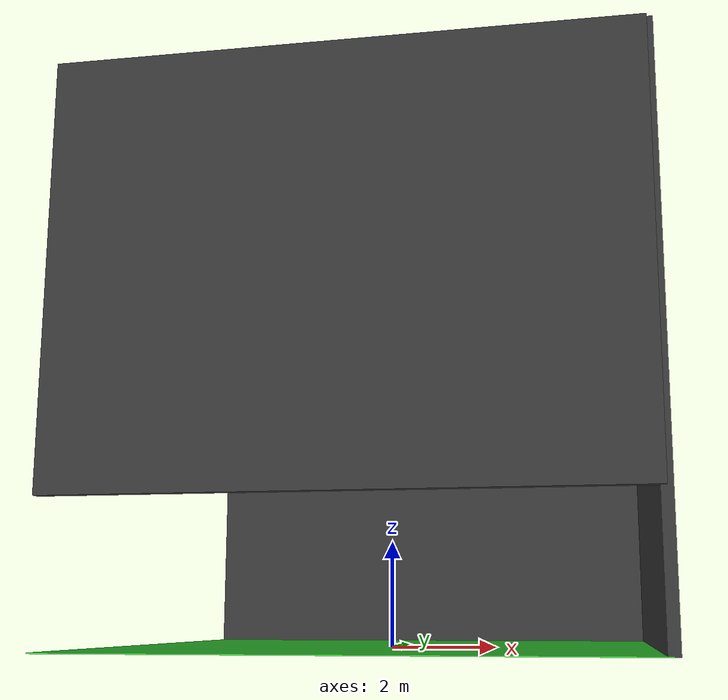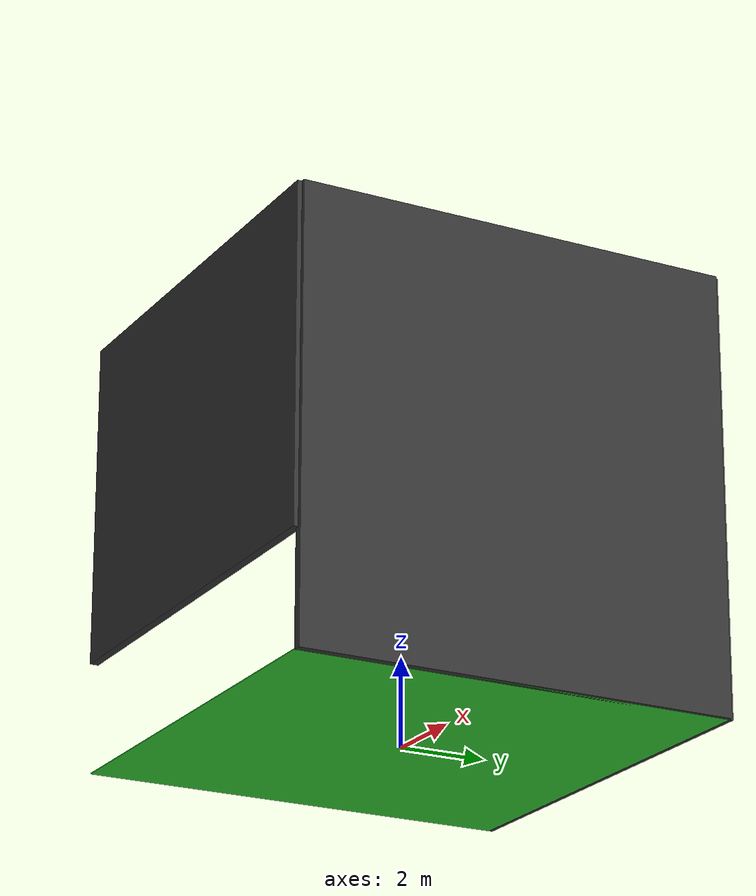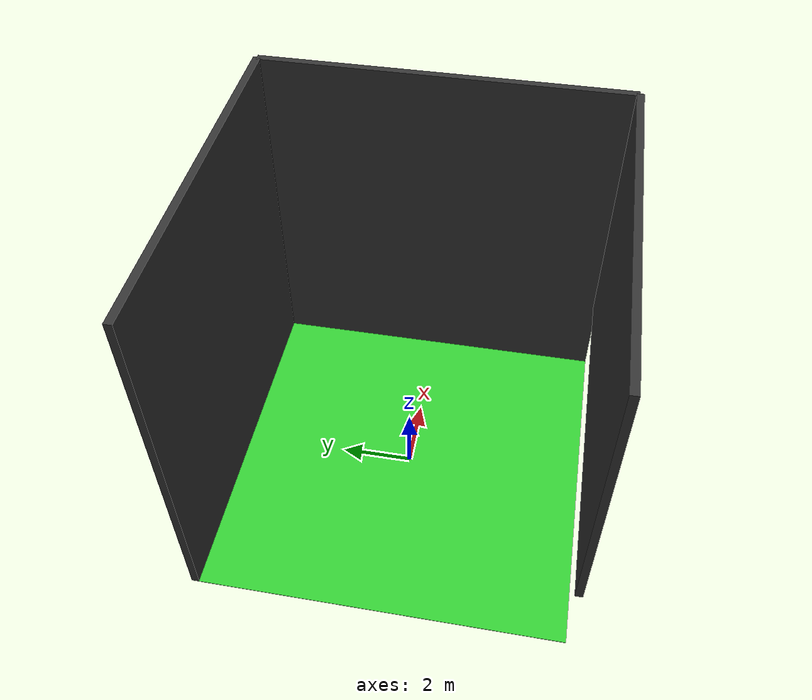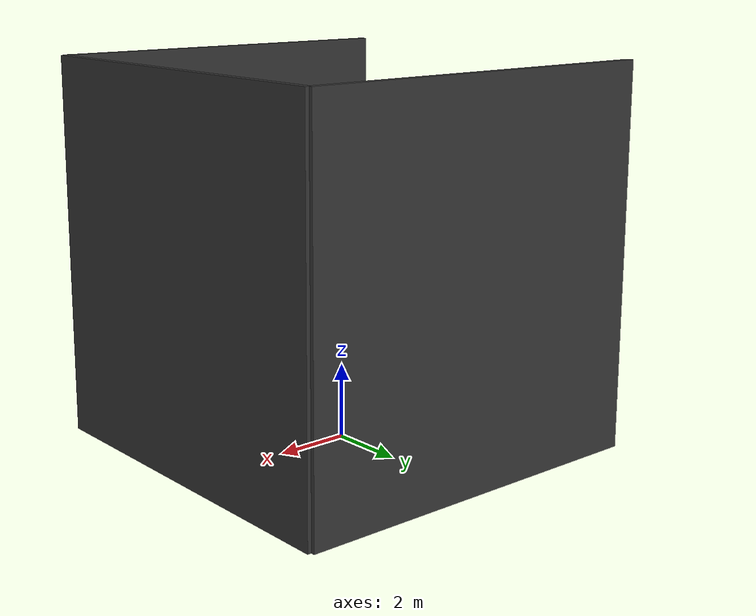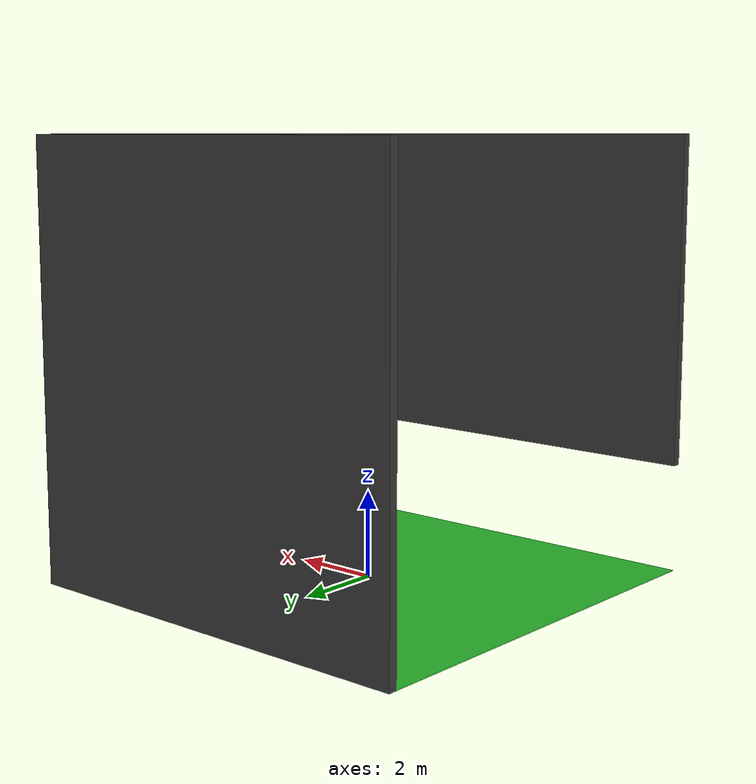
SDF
<?xml version='1.0'?>
<sdf version='1.4'>
	<model name="cyberzoo">
		<static>true</static>
		<pose>0 0 0 0 0 0</pose>

		<link name="floor">
			<pose>0 0 0.01 0 0 0</pose>
			<visual name="visual">
				<geometry>
					<box>
						<size>10 10 0.02</size>
					</box>
				</geometry>
				<material>
					<ambient>0 0 0 1</ambient>
					<diffuse>0.2 0.8 0.2 1</diffuse>
					<specular>0.2 0.2 0.2 1</specular>
					<emissive>0 0 0 0</emissive>
				</material>
			</visual>
			<collision name="collision">
				<geometry>
					<box>
						<size>10 10 0.02</size>
					</box>
				</geometry>
			</collision>
		</link>

		<link name="north_wall">
			<pose>0 5 5 0 0 0</pose>
			<visual name="visual">
				<geometry>
					<box>
						<size>10 0.2 10</size>
					</box>
				</geometry>
				<material>
					<ambient>0 0 0 1</ambient>
					<diffuse>0.2 0.2 0.2 1</diffuse>
					<specular>0 0 0 1</specular>
					<emissive>0 0 0 0</emissive>
				</material>
			</visual>
			<collision name="collision">
				<geometry>
					<box>
						<size>10 0.2 10</size>
					</box>
				</geometry>
			</collision>
		</link>

		<link name="east_wall">
			<pose>5 0 5 0 0 0</pose>
			<visual name="visual">
				<geometry>
					<box>
						<size>0.2 10 10</size>
					</box>
				</geometry>
				<material>
					<ambient>0 0 0 1</ambient>
					<diffuse>0.2 0.2 0.2 1</diffuse>
					<specular>0 0 0 1</specular>
					<emissive>0 0 0 0</emissive>
				</material>
			</visual>
			<collision name="collision">
				<geometry>
					<box>
						<size>0.2 10 10</size>
					</box>
				</geometry>
			</collision>
		</link>

		<link name="south_wall">
			<pose>0 -5 6.25 0 0 0</pose>
			<visual name="visual">
				<geometry>
					<box>
						<size>10 0.2 7.5</size>
					</box>
				</geometry>
				<material>
					<ambient>0 0 0 1</ambient>
					<diffuse>0.2 0.2 0.2 1</diffuse>
					<specular>0 0 0 1</specular>
					<emissive>0 0 0 0</emissive>
				</material>
			</visual>
			<collision name="collision">
				<geometry>
					<box>
						<size>10 0.2 7.5</size>
					</box>
				</geometry>
			</collision>
		</link>
	</model>
</sdf>
